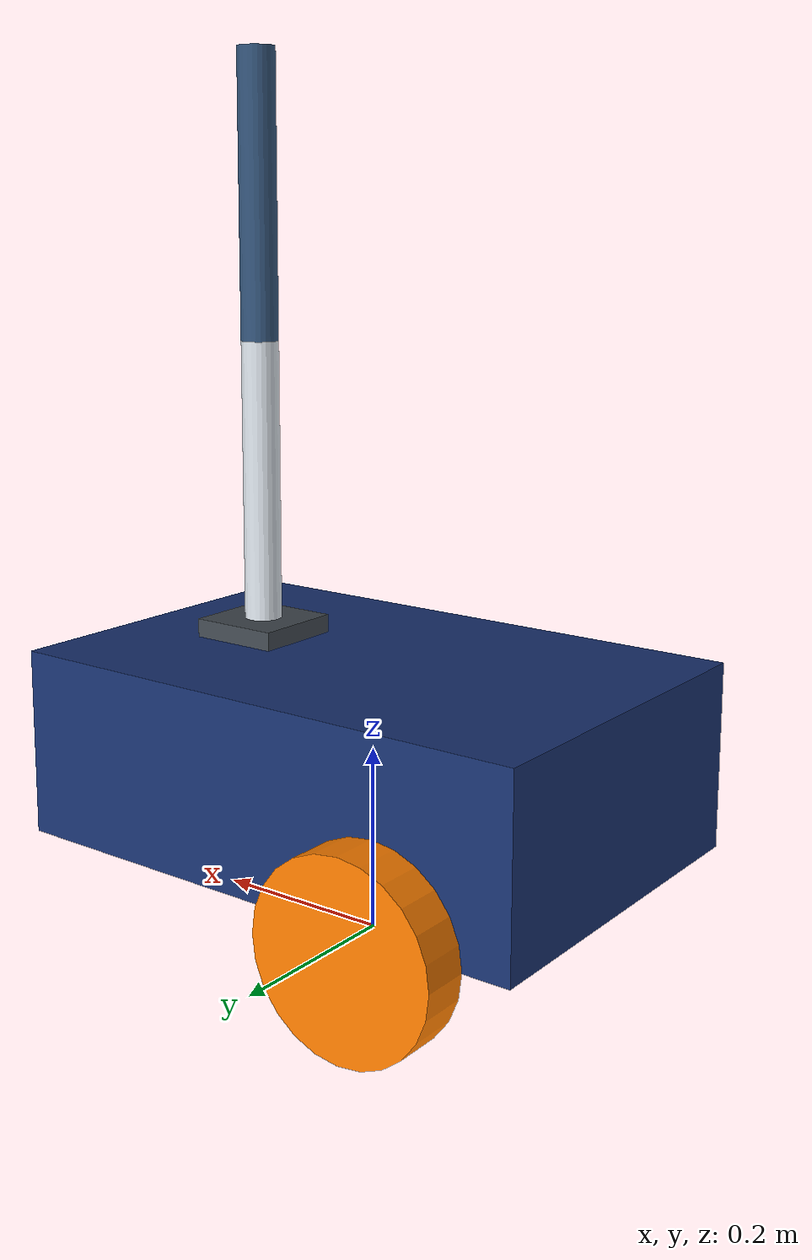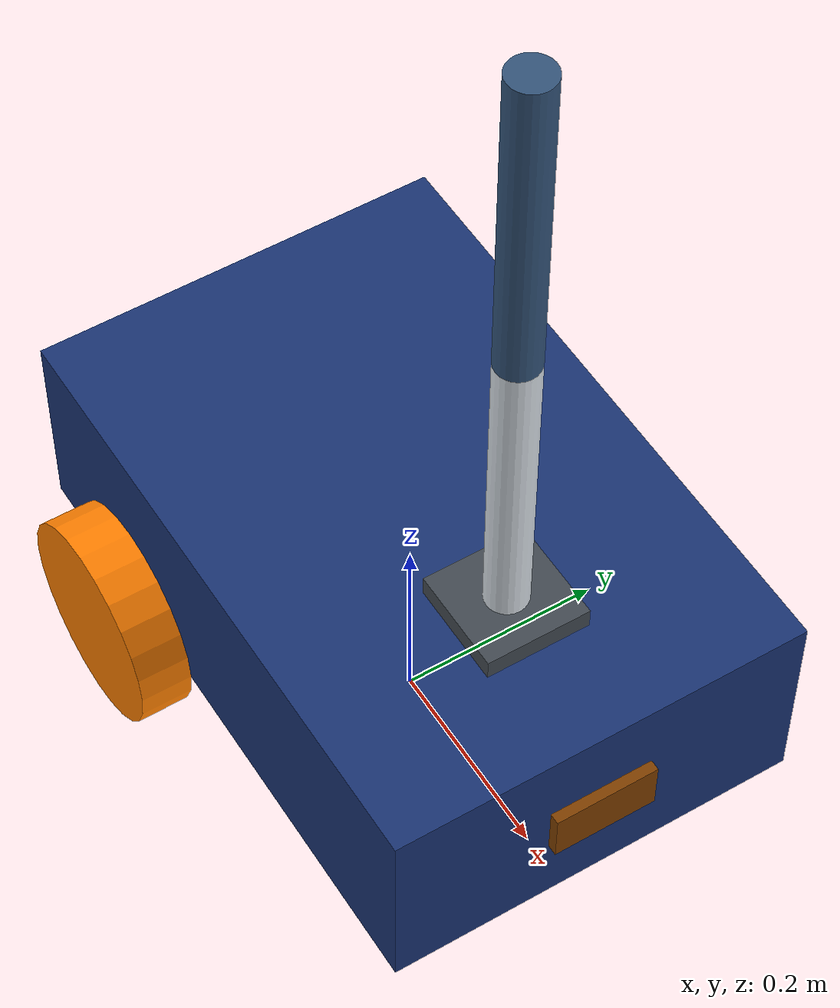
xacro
<?xml version="1.0"?>
<robot name="my_robot" xmlns:xacro="http://www.ros.org/wiki/xacro">

    <xacro:include filename="common_properties.xacro"/>
    <xacro:include filename="mobile_base.xacro"/>
    <xacro:include filename="mobile_base_gazebo.xacro"/>
    <xacro:include filename="arm.xacro"/>
    <xacro:include filename="arm_gazebo.xacro"/>
    <xacro:include filename="camera.xacro"/>

    <joint name="mobile_base_arm_joint" type="fixed">
        <parent link="base_link"/>
        <child link="arm_base_link"/>
        <origin xyz="${base_length/4} 0 ${base_height}" rpy="0 0 0"/>
    </joint>

</robot>

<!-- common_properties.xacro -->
<robot xmlns:xacro="http://www.ros.org/wiki/xacro">

    <!-- 太空灰 -->
    <material name="body_grey">
        <color rgba="0.45 0.48 0.52 1.0"/>
    </material>

    <!-- 巧克力色 -->
    <material name="chocolate">
        <color rgba="0.5 0.25 0.0 1.0"/>
    </material>

    <!-- 深海蓝 -->
    <material name="deep_blue">
        <color rgba="0.1 0.2 0.45 1.0"/>
    </material>

    <!-- 活力橙 -->
    <material name="vibrant_orange">
        <color rgba="1.0 0.5 0.0 1.0"/>
    </material>

    <!-- 亮银白 -->
    <material name="silver_white">
        <color rgba="0.85 0.88 0.9 1.0"/>
    </material>

    <!-- 连杆1：亮浅银 -->
    <material name="link_bright_silver">
        <color rgba="0.86 0.89 0.92 1.0"/>
    </material>

    <!-- 连杆2：炭灰色 -->
    <material name="link_charcoal">
        <color rgba="0.26 0.29 0.32 1.0"/>
    </material>

    <!-- 连杆3 冷调金属蓝 -->
    <material name="link_cold_blue_metal">
        <color rgba="0.20 0.33 0.48 1.0"/>
    </material>

    <xacro:macro name="box_inertia" params="m x y z o_xyz o_rpy">
        <inertial>
            <mass value="${m}"/>
            <origin xyz="${o_xyz}" rpy="${o_rpy}"/>
            <inertia ixx="${(m/12) * (y*y + z*z)}" ixy="0.0" ixz="0.0"
                     iyy="${(m/12) * (x*x + z*z)}" iyz="0.0"
                     izz="${(m/12) * (x*x + y*y)}"/>
        </inertial>
    </xacro:macro>

    <xacro:macro name="cylinder_inertia" params="m r l o_xyz o_rpy">
        <inertial>
            <mass value="${m}"/>
            <origin xyz="${o_xyz}" rpy="${o_rpy}"/>
            <inertia ixx="${(m/12) * (3*r*r + l*l)}" ixy="0.0" ixz="0.0"
                     iyy="${(m/12) * (3*r*r + l*l)}" iyz="0.0"
                     izz="${(m/2) * (r*r)}"/>
        </inertial>
    </xacro:macro>

    <xacro:macro name="sphere_inertia" params="m r o_xyz o_rpy">
        <inertial>
            <mass value="${m}"/>
            <origin xyz="${o_xyz}" rpy="${o_rpy}"/>
            <inertia ixx="${2*m*r*r/5}" ixy="0.0" ixz="0.0"
                     iyy="${2*m*r*r/5}" iyz="0.0"
                     izz="${2*m*r*r/5}"/>
        </inertial>
    </xacro:macro>

</robot>

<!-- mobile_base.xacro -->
<!--
    双差分驱动小车 XACRO 模型
    组成：底盘base_link + 左右驱动轮 + 前部万向随动轮caster
    使用xacro封装宏简化重复车轮连杆代码，内置标准几何体惯性宏
    坐标系：base_footprint为地面基准固定坐标系，底盘、车轮均通过关节挂载其上
    关节类型：驱动轮continuous连续旋转关节，底盘/随动轮为fixed固定关节
-->
<robot xmlns:xacro="http://www.ros.org/wiki/xacro">

    <!-- 全局尺寸参数定义，统一修改车体大小 -->
    <!-- 底盘长方体长宽高 -->
    <xacro:property name="base_length" value="0.6" />
    <xacro:property name="base_width" value="0.4" />
    <xacro:property name="base_height" value="0.2" />
    <!-- 驱动轮圆柱长度、半径 -->
    <xacro:property name="wheel_length" value="0.05" />
    <xacro:property name="wheel_radius" value="0.1" />

    <!-- 车轮通用宏模板：生成单侧驱动轮连杆，prefix区分左/右轮 -->
    <xacro:macro name="wheel_link" params="prefix">
        <link name="${prefix}_wheel_link">
            <!-- 可视化模型：RViz显示外观 -->
            <visual>
                <geometry>
                    <cylinder radius="${wheel_radius}" length="${wheel_length}" />
                </geometry>
                <!-- 圆柱绕X轴旋转90度，让圆柱侧面贴合地面 -->
                <origin xyz="0 0 0" rpy="${pi/2.0} 0 0" />
                <material name="vibrant_orange" />
            </visual>

            <!-- 碰撞模型：Gazebo物理碰撞检测 -->
            <collision>
                <geometry>
                    <sphere radius="${wheel_radius}" />
                </geometry>
                <origin xyz="0 0 0" rpy="0 0 0" />
            </collision>

            <!-- xacro内置圆柱惯性宏：自动填充连杆质量、质心、转动惯量 -->
            <xacro:cylinder_inertia m="1.0" r="${wheel_radius}" l="${wheel_length}" o_xyz="0 0 0" o_rpy="${pi/2.0} 0 0"/>
        </link>
    </xacro:macro>

    <!-- 地面基准坐标系，无实体模型，作为车体根坐标 -->
    <link name="base_footprint" />

    <!-- 小车底盘主体连杆 -->
    <link name="base_link">
        <!-- 底盘可视化长方体 -->
        <visual>
            <geometry>
                <box size="${base_length} ${base_width} ${base_height}" />
            </geometry>
            <!-- origin偏移使长方体底部对齐连杆坐标系原点 -->
            <origin xyz="0 0 ${base_height/2.0}" rpy="0 0 0" />
            <material name="deep_blue" />
        </visual>
        <!-- 碰撞模型：Gazebo物理碰撞检测 -->
        <collision>
            <geometry>
                <box size="${base_length} ${base_width} ${base_height}" />
            </geometry>
            <origin xyz="0 0 ${base_height/2.0}" rpy="0 0 0" />
        </collision>

        <!-- 长方体惯性宏，底盘质量5kg -->
        <xacro:box_inertia m="5.0" x="${base_length}" y="${base_width}" z="${base_height}" o_xyz="0 0 ${base_height/2.0}" o_rpy="0 0 0"/>
    </link>

    <!-- 实例化宏，生成右驱动轮、左驱动轮连杆 -->
    <xacro:wheel_link prefix="right" />
    <xacro:wheel_link prefix="left" />

    <!-- 前部万向随动轮（球形无动力） -->
    <link name="caster_wheel_link">
        <visual>
            <geometry>
                <sphere radius="${wheel_radius/2.0}" />
            </geometry>
            <origin xyz="0 0 0" rpy="0 0 0" />
            <material name="vibrant_orange" />
        </visual>

        <collision>
            <geometry>
                <sphere radius="${wheel_radius/2.0}" />
            </geometry>
            <origin xyz="0 0 0" rpy="0 0 0" />
        </collision>

        <!-- 球体惯性宏，随动轮质量0.5kg -->
        <xacro:sphere_inertia m="0.5" r="${wheel_radius/2.0}" o_xyz="0 0 0" o_rpy="0 0 0"/>
    </link>

    <!-- 固定关节：地面基准footprint连接到底盘base_link -->
    <!-- origin抬高一个车轮半径，让底盘离地，车轮接触地面 -->
    <joint name="base_joint" type="fixed">
        <parent link="base_footprint" />
        <child link="base_link" />
        <origin xyz="0 0 ${wheel_radius}" rpy="0 0 0" />
    </joint>

    <!-- 右驱动轮连续旋转关节，type=continuous无角度限位 -->
    <!-- axis 0 1 0：绕Y轴旋转实现小车前进后退 -->
    <joint name="base_right_wheel_joint" type="continuous">
        <parent link="base_link" />
        <child link="right_wheel_link" />
        <origin xyz="${-base_length/4.0} ${-(base_width+wheel_length)/2} 0" rpy="0 0 0" />
        <axis xyz="0 1 0" />
    </joint>

    <!-- 左驱动轮连续旋转关节 -->
    <joint name="base_left_wheel_joint" type="continuous">
        <parent link="base_link" />
        <child link="left_wheel_link" />
        <origin xyz="${-base_length/4.0} ${(base_width+wheel_length)/2} 0" rpy="0 0 0" />
        <axis xyz="0 1 0" />
    </joint>

    <!-- 前部随动轮固定关节，无旋转自由度，仅起支撑作用 -->
    <joint name="base_caster_wheel_joint" type="fixed">
        <parent link="base_link" />
        <child link="caster_wheel_link" />
        <origin xyz="${base_length/3.0} 0 ${-wheel_radius/2.0}" rpy="0 0 0" />
    </joint>

</robot>

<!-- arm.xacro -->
<robot xmlns:xacro="http://www.ros.org/wiki/xacro">

    <xacro:property name="arm_base_length" value="0.1"/>
    <xacro:property name="arm_base_width" value="0.1"/>
    <xacro:property name="arm_base_height" value="0.02"/>
    <xacro:property name="forearm_radius" value="0.02"/>
    <xacro:property name="forearm_length" value="0.3"/>
    <xacro:property name="hand_radius" value="0.02"/>
    <xacro:property name="hand_length" value="0.3"/>

    <link name="arm_base_link">
        <visual>
            <geometry>
                <box size="${arm_base_length} ${arm_base_width} ${arm_base_height}"/>
            </geometry>
            <origin xyz="0 0 ${arm_base_height / 2.0}" rpy="0 0 0"/>
            <material name="link_charcoal"/>
        </visual>

        <collision>
            <geometry>
                <box size="${arm_base_length} ${arm_base_width} ${arm_base_height}"/>
            </geometry>
            <origin xyz="0 0 ${arm_base_height / 2.0}" rpy="0 0 0"/>
        </collision>

        <xacro:box_inertia m="5" x="${arm_base_length}" y="${arm_base_width}" z="${arm_base_height}"
                           o_xyz="0 0 ${arm_base_height / 2.0}"
                           o_rpy="0 0 0"/>
    </link>

    <link name="forearm_link">
        <visual>
            <geometry>
                <cylinder radius="${forearm_radius}" length="${forearm_length}"/>
            </geometry>
            <origin xyz="0 0 ${forearm_length/2}" rpy="0 0 0"/>
            <material name="link_bright_silver"/>
        </visual>
        <collision>
            <geometry>
                <cylinder radius="${forearm_radius}" length="${forearm_length}"/>
            </geometry>
            <origin xyz="0 0 ${forearm_length/2}" rpy="0 0 0"/>
        </collision>
        <xacro:cylinder_inertia m="0.3" r="${forearm_radius}" l="${forearm_length}" o_xyz="0 0 ${forearm_length/2}"
                                o_rpy="0 0 0"/>
    </link>

    <link name="hand_link">
        <visual>
            <geometry>
                <cylinder radius="${hand_radius}" length="${hand_length}"/>
            </geometry>
            <origin xyz="0 0 ${hand_length/2}" rpy="0 0 0"/>
            <material name="link_cold_blue_metal"/>
        </visual>
        <collision>
            <geometry>
                <cylinder radius="${hand_radius}" length="${hand_length}"/>
            </geometry>
            <origin xyz="0 0 ${hand_length/2}" rpy="0 0 0"/>
        </collision>
        <xacro:cylinder_inertia m="0.3" r="${hand_radius}" l="${hand_length}" o_xyz="0 0 ${hand_length/2}"
                                o_rpy="0 0 0"/>
    </link>

    <joint name="arm_base_forearm_joint" type="revolute">
        <parent link="arm_base_link"/>
        <child link="forearm_link"/>
        <origin xyz="0 0 ${arm_base_height}" rpy="0 0 0"/>
        <axis xyz="0 1 0"/>
        <limit lower="0" upper="${pi/2.0}" effort="100" velocity="10"/>
        <dynamics friction="0.3" damping="0.3"/>
    </joint>
    arm_base_forearm_joint
    <joint name="forearm_hand_joint" type="revolute">
        <parent link="forearm_link"/>
        <child link="hand_link"/>
        <origin xyz="0 0 ${forearm_length}" rpy="0 0 0"/>
        <axis xyz="0 1 0"/>
        <limit lower="0" upper="${pi/2.0}" effort="100" velocity="10"/>
        <dynamics friction="0.3" damping="0.3"/>
    </joint>

</robot>

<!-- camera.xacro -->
<robot xmlns:xacro="http://www.ros.org/wiki/xacro">

    <xacro:property name="camera_length" value="0.01"/>
    <xacro:property name="camera_width" value="0.1"/>
    <xacro:property name="camera_height" value="0.05"/>

    <link name="camera_link">
        <visual>
            <geometry>
                <box size="${camera_length} ${camera_width} ${camera_height}"/>
            </geometry>
            <material name="chocolate"/>
        </visual>

        <collision>
            <geometry>
                <box size="${camera_length} ${camera_width} ${camera_height}"/>
            </geometry>
        </collision>

        <xacro:box_inertia m="0.1" x="${camera_length}" y="${camera_width}" z="${camera_height}" o_xyz="0 0 0"
                           o_rpy="0 0 0"/>
    </link>

    <joint name="base_camera_joint" type="fixed">
        <parent link="base_link"/>
        <child link="camera_link"/>
        <origin xyz="${(base_length+camera_length)/2.0} 0 ${base_height/2}" rpy="0 0 0"/>
    </joint>

    <link name="camera_link_optical"/>
    <joint name="camera_optical_joint" type="fixed">
        <origin xyz="0 0 0" rpy="${-pi/2} 0 ${-pi/2}"/>
        <parent link="camera_link"/>
        <child link="camera_link_optical"/>
    </joint>

    <gazebo reference="camera_link">
        <sensor name="camera" type="camera">
            <camera>
                <horizontal_fov>1.3962634</horizontal_fov>
                <image>
                    <width>640</width>
                    <height>480</height>
                    <format>R8G8B8</format>
                </image>
                <clip>
                    <near>0.1</near>
                    <far>15</far>
                </clip>
                <noise>
                    <type>gaussian</type>
                    <mean>0.0</mean>
                    <stddev>0.007</stddev>
                </noise>
                <optical_frame_id>camera_link_optical</optical_frame_id>
                <camera_info_topic>camera/camera_info</camera_info_topic>
            </camera>
            <always_on>1</always_on>
            <update_rate>20</update_rate>
            <visualize>true</visualize>
            <topic>camera/image_raw</topic>
        </sensor>
    </gazebo>

</robot>
